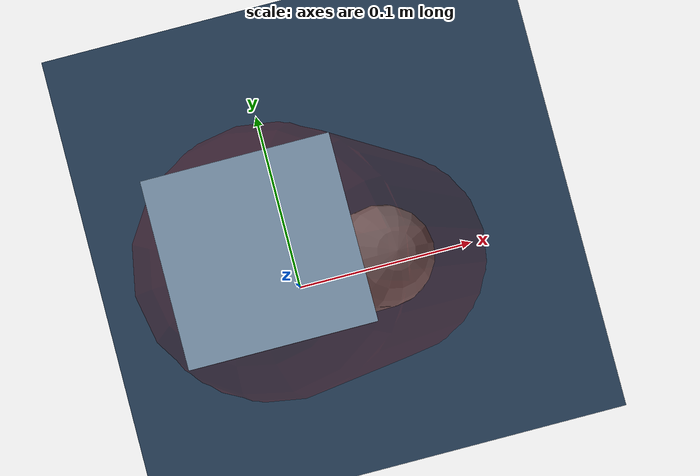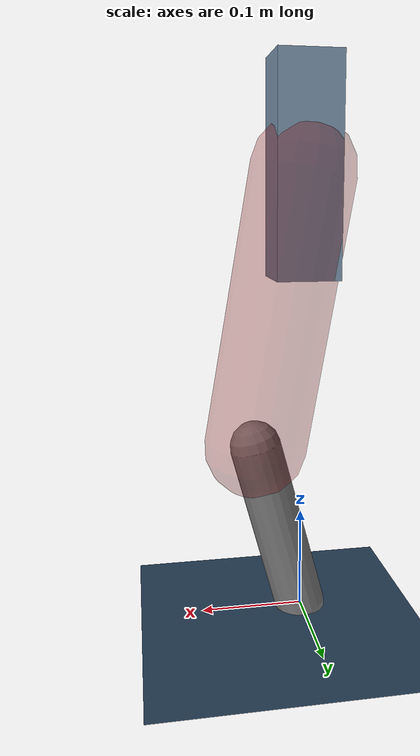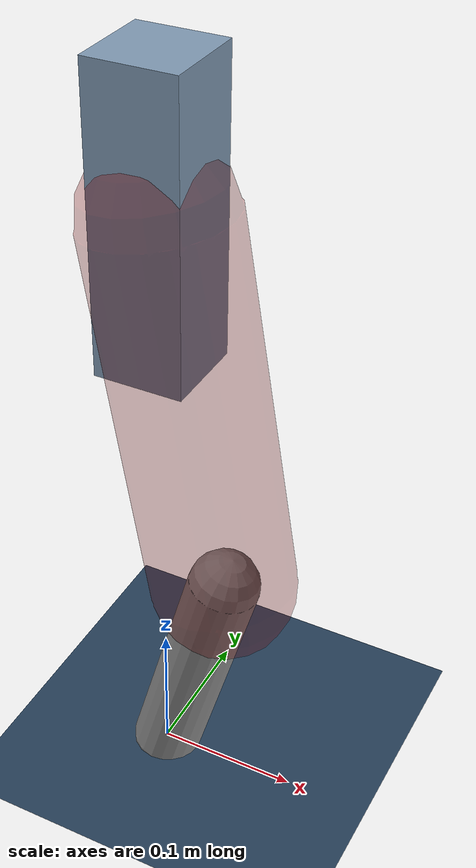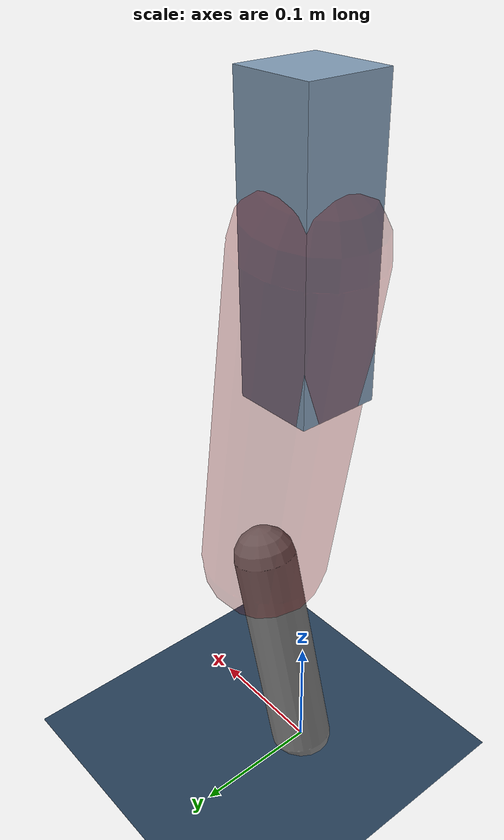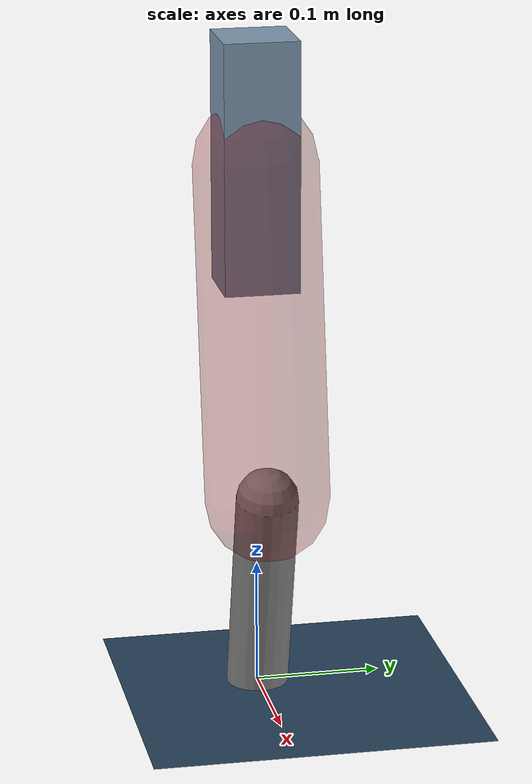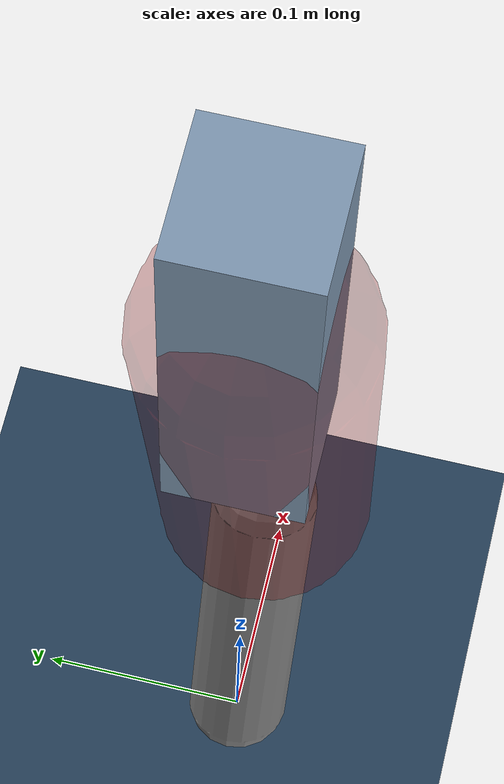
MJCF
<mujoco model="Hopper2D">
	<compiler inertiafromgeom="true" angle="radian" />
	<option timestep="0.001" integrator="implicit" cone="elliptic" solver="Newton" tolerance="1e-10" />

	<default>
		<geom contype="1" conaffinity="1" condim="3" friction="2 0.005 0.0001" solref="0.005 1" />
		<joint limited="true" damping="0.1" />
	</default>

	<asset>
		<texture name="skybox" type="skybox" builtin="gradient" rgb1=".4 .6 .8" rgb2="0 0 0" width="800" height="800" />
		<texture name="grid" type="2d" builtin="checker" rgb1=".1 .2 .3" rgb2=".2 .3 .4" width="300" height="300" mark="edge" markrgb=".2 .3 .4" />
		<material name="ground" texture="grid" texrepeat="1 1" texuniform="true" reflectance="0.1" />
		<material name="leg" rgba="0.5 0.6 0.7 1" />
	</asset>

	<worldbody>

		<geom name="floor" type="plane" size="5 5 0.25" material="ground" />

		<light directional="false" diffuse="0.8 0.8 0.8" specular="0.3 0.3 0.3" pos="0 0 2" dir="0 0 -1" />
		<light mode="targetbodycom" target="base" directional="false" diffuse="0.8 0.8 0.8" specular="0.3 0.3 0.3" pos="0 0 2" dir="0 0 -1" />

		<camera name="fixed" pos="0 -2 1" xyaxes="1 0 0 0 0 1" />
		<camera name="tracking" mode="trackcom" pos="0 -3 1" />

		<body name="root" pos="0 0 0.43379807831298556">
			<joint name="slide_x" type="slide" axis="1 0 0" range="-100 100" />
			<joint name="slide_z" type="slide" axis="0 0 1" range="0 10" />

			<body name="base" pos="0 0 0">
				<geom name="torso" type="box" size="0.03 0.03 0.1" mass="1.843" material="leg" />

				<body name="link1" pos="0 0 0" euler="0 1.3980624084895819 0">
					<joint type="hinge" axis="0 -1 0" pos="0 0 0" name="hinge1" limited="true" range="-3.14 3.14" stiffness="0" damping="0.1" />
					<geom name="thigh" type="capsule" fromto="0 0 0 0.2666567009985935 0 0" size="0.05" rgba="0.5 0 0 0.3" mass="0.8998730926962024" />

					<body name="link2" pos="0.2666567009985935 0 0" euler="0 0.4344420426140525 0">
						<joint type="hinge" axis="0 -1 0" pos="0 0 0" name="hinge2" limited="true" range="-3.14 3.14" stiffness="0" damping="0.1" />
						<geom name="shank" type="capsule" fromto="0 0 0 0.17714137731439206 0 0" size="0.025" mass="0.3814272395829528" />

					</body>
				</body>
			</body>
		</body>
	</worldbody>

	<actuator>
		<motor name="torque1" joint="hinge1" ctrlrange="-71.89339750051252 71.89339750051252" ctrllimited="true" gear="1" />
		<motor name="torque2" joint="hinge2" ctrlrange="-32.82326023523573 32.82326023523573" ctrllimited="true" gear="1" />
	</actuator>
</mujoco>
